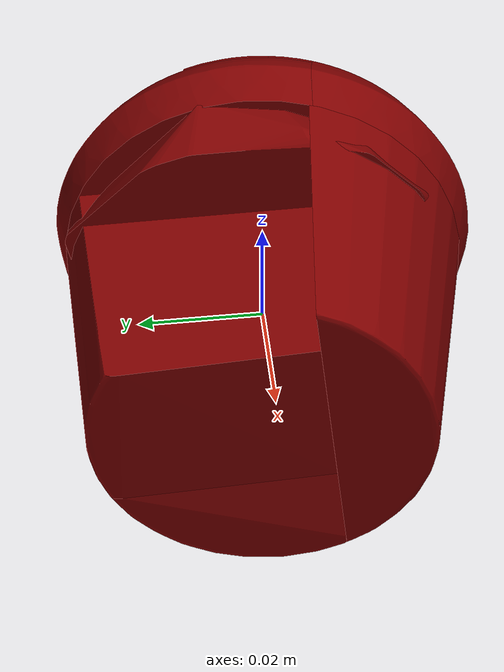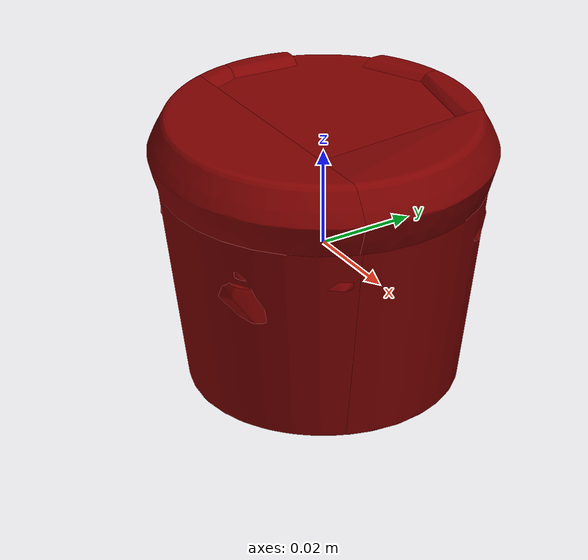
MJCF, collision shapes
<?xml version='1.0' encoding='utf-8'?>
<mujoco model="jam_6">
  <asset>
    <mesh file="visual/model_normalized_0.obj" name="model_normalized_0_vis" scale="0.06749999999999998 0.06749999999999998 0.06749999999999998" refquat="1.0 0.0 0.0 0.0" />
    <texture type="2d" name="image0" file="visual/image0.png" />
    <material name="Material.190" texture="image0" specular="0.5" shininess="0.032000008" />
    <mesh file="collision/collision_mesh_collision_0.obj" name="jam_collision_mesh_0" scale="0.06749999999999998 0.06749999999999998 0.06749999999999998" refquat="1.0 0.0 0.0 0.0" />
    <mesh file="collision/collision_mesh_collision_1.obj" name="jam_collision_mesh_1" scale="0.06749999999999998 0.06749999999999998 0.06749999999999998" refquat="1.0 0.0 0.0 0.0" />
    <mesh file="collision/collision_mesh_collision_2.obj" name="jam_collision_mesh_2" scale="0.06749999999999998 0.06749999999999998 0.06749999999999998" refquat="1.0 0.0 0.0 0.0" />
    <mesh file="collision/collision_mesh_collision_3.obj" name="jam_collision_mesh_3" scale="0.06749999999999998 0.06749999999999998 0.06749999999999998" refquat="1.0 0.0 0.0 0.0" />
    <mesh file="collision/collision_mesh_collision_4.obj" name="jam_collision_mesh_4" scale="0.06749999999999998 0.06749999999999998 0.06749999999999998" refquat="1.0 0.0 0.0 0.0" />
    <mesh file="collision/collision_mesh_collision_5.obj" name="jam_collision_mesh_5" scale="0.06749999999999998 0.06749999999999998 0.06749999999999998" refquat="1.0 0.0 0.0 0.0" />
    <mesh file="collision/collision_mesh_collision_6.obj" name="jam_collision_mesh_6" scale="0.06749999999999998 0.06749999999999998 0.06749999999999998" refquat="1.0 0.0 0.0 0.0" />
    <mesh file="collision/collision_mesh_collision_7.obj" name="jam_collision_mesh_7" scale="0.06749999999999998 0.06749999999999998 0.06749999999999998" refquat="1.0 0.0 0.0 0.0" />
    <mesh file="collision/collision_mesh_collision_8.obj" name="jam_collision_mesh_8" scale="0.06749999999999998 0.06749999999999998 0.06749999999999998" refquat="1.0 0.0 0.0 0.0" />
    <mesh file="collision/collision_mesh_collision_9.obj" name="jam_collision_mesh_9" scale="0.06749999999999998 0.06749999999999998 0.06749999999999998" refquat="1.0 0.0 0.0 0.0" />
    <mesh file="collision/collision_mesh_collision_10.obj" name="jam_collision_mesh_10" scale="0.06749999999999998 0.06749999999999998 0.06749999999999998" refquat="1.0 0.0 0.0 0.0" />
    <mesh file="collision/collision_mesh_collision_11.obj" name="jam_collision_mesh_11" scale="0.06749999999999998 0.06749999999999998 0.06749999999999998" refquat="1.0 0.0 0.0 0.0" />
  </asset>
  <default>
    <default class="region">
      <geom group="1" conaffinity="0" contype="0" rgba="0 1 0 0" mass="0" />
    </default>
    <default class="collision">
      <geom group="0" rgba="0.5 0 0 0.5" density="1574.859784903" />
    </default>
  </default>
  <worldbody>
    <body>
      <body name="object">
        <geom solimp="0.998 0.998 0.001" solref="0.001 1" density="157.485978490" friction="0.95 0.3 0.1" type="mesh" mesh="model_normalized_0_vis" conaffinity="0" contype="0" group="1" material="Material.190" />
        <geom class="region" name="reg_bbox" type="box" pos="0.0 -4.05000000161526e-09 0.0" size="0.03396276067499999 0.03397876154999998 0.02797052444999999" />
        <geom mesh="jam_collision_mesh_0" type="mesh" class="collision" />
        <geom mesh="jam_collision_mesh_1" type="mesh" class="collision" />
        <geom mesh="jam_collision_mesh_2" type="mesh" class="collision" />
        <geom mesh="jam_collision_mesh_3" type="mesh" class="collision" />
        <geom mesh="jam_collision_mesh_4" type="mesh" class="collision" />
        <geom mesh="jam_collision_mesh_5" type="mesh" class="collision" />
        <geom mesh="jam_collision_mesh_6" type="mesh" class="collision" />
        <geom mesh="jam_collision_mesh_7" type="mesh" class="collision" />
        <geom mesh="jam_collision_mesh_8" type="mesh" class="collision" />
        <geom mesh="jam_collision_mesh_9" type="mesh" class="collision" />
        <geom mesh="jam_collision_mesh_10" type="mesh" class="collision" />
        <geom mesh="jam_collision_mesh_11" type="mesh" class="collision" />
      </body>
    </body>
  </worldbody>
</mujoco>
